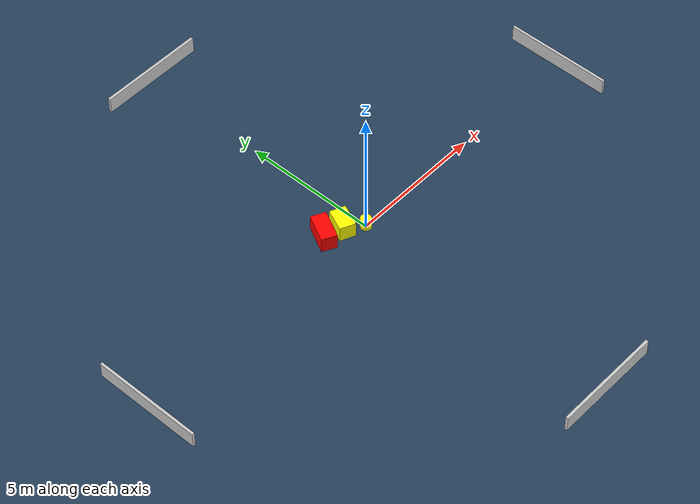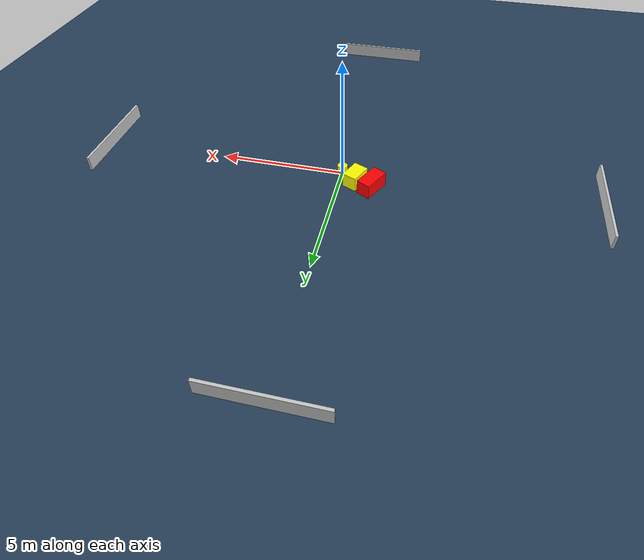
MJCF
<?xml version="1.0" ?>
<mujoco model="generated_environment">
  <option timestep="0.01" integrator="RK4" cone="elliptic"/>
  <default>
    <geom density="1"/>
  </default>
  <asset>
    <texture builtin="gradient" height="3072" name="skybox" rgb1="0.3 0.5 0.7" rgb2="0 0 0" type="skybox" width="512"/>
    <texture builtin="checker" height="300" name="groundplane" rgb1="0.2 0.3 0.4" rgb2="0.1 0.2 0.3" type="2d" width="300"/>
    <material name="groundplane" reflectance="0.2" texrepeat="5 5" texture="groundplane"/>
  </asset>
  <worldbody>
    <light dir="0 0 -1" directional="true" pos="0 0 1.5"/>
    <geom condim="3" friction="0.5 0.005 0.001" material="groundplane" name="floor" pos="0 0 0" size="0 0 0.05" type="plane"/>
    <body name="walls">
      <geom name="wall_1" condim="4" pos="-10.0 0.0 0.3" rgba="0.800000011920929 0.800000011920929 0.800000011920929 1.0" size="0.05 2.0 0.3" type="box"/>
      <geom name="wall_2" condim="4" pos="10.0 0.0 0.3" rgba="0.800000011920929 0.800000011920929 0.800000011920929 1.0" size="0.05 2.0 0.3" type="box"/>
      <geom name="wall_3" condim="4" pos="0.0 -10.0 0.3" rgba="0.800000011920929 0.800000011920929 0.800000011920929 1.0" size="2.0 0.05 0.3" type="box"/>
      <geom name="wall_4" condim="4" pos="0.0 10.0 0.3" rgba="0.800000011920929 0.800000011920929 0.800000011920929 1.0" size="2.0 0.05 0.3" type="box"/>
    </body>
    <body name="robot">
      <joint name="joint_x" type="slide" pos="0 0 0" axis="1 0 0"/>
      <joint name="joint_y" type="slide" pos="0 0 0" axis="0 1 0"/>
      <geom name="robot" type="cylinder" pos="0.0 0.0 0.2" size="0.2 0.2 0.0" mass="5.0" friction="1.0 0.005 0.0001" condim="4" rgba="1.0 1.0 0.0 1.0"/>
    </body>
    <body name="obstacle_1_movable">
      <geom name="obstacle_1_movable" condim="4" pos="-0.6066764896022586 0.47847479847015045 0.3" euler="0 0 66.5973240498386" friction="0.0 0.005 0.001" rgba="1.0 1.0 0.0 1.0" size="0.4210622769744246 0.2932668084386646 0.3" type="box" mass="0.1"/>
      <joint type="free"/>
    </body>
    <body name="obstacle_2_static">
      <geom name="obstacle_2_static" condim="4" pos="-1.2881395498914052 0.6879880824937781 0.3" euler="0 0 242.6005312805908" friction="0.0 0.005 0.001" rgba="1.0 0.0 0.0 1.0" size="0.5387813849790126 0.28291856750213584 0.3" type="box"/>
    </body>
  </worldbody>
  <actuator>
    <motor name="actuator_x" joint="joint_x" gear="1" ctrlrange="-1 1"/>
    <motor name="actuator_y" joint="joint_y" gear="1" ctrlrange="-1 1"/>
  </actuator>
</mujoco>
